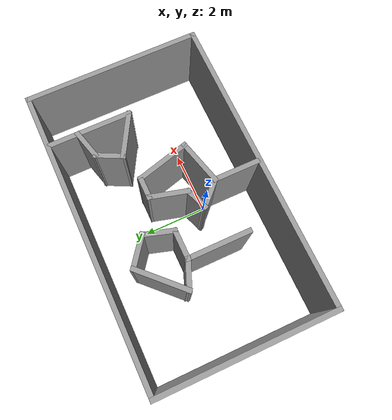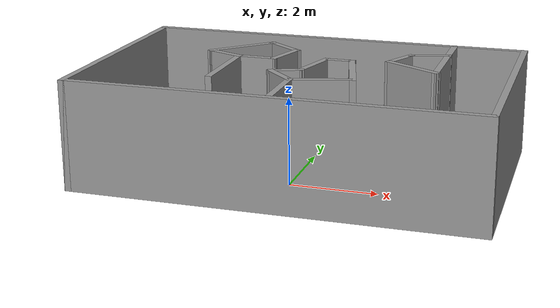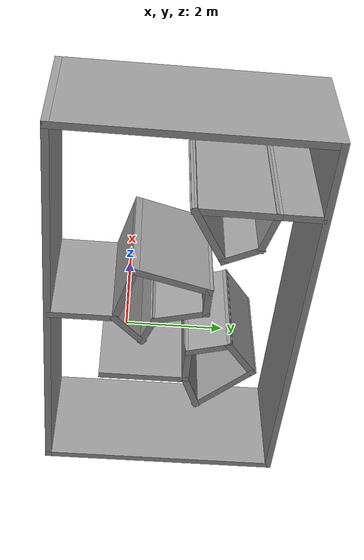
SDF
<?xml version='1.0'?>
<sdf version='1.7'>
  <model name='buildings'>
    <pose>0.05 1.005 0 0 -0 0</pose>
    <link name='Wall_1'>
      <collision name='Wall_1_Collision'>
        <geometry>
          <box>
            <size>5.5 0.15 2.5</size>
          </box>
        </geometry>
        <pose>0 0 1.25 0 -0 0</pose>
      </collision>
      <visual name='Wall_1_Visual'>
        <pose>0 0 1.25 0 -0 0</pose>
        <geometry>
          <box>
            <size>5.5 0.15 2.5</size>
          </box>
        </geometry>
        <material>
          <script>
            <uri>file://media/materials/scripts/gazebo.material</uri>
            <name>Gazebo/Grey</name>
          </script>
          <ambient>1 1 1 1</ambient>
        </material>
        <meta>
          <layer>0</layer>
        </meta>
      </visual>
      <pose>-4.55 0 0 0 -0 1.5708</pose>
    </link>
    <link name='Wall_10'>
      <collision name='Wall_10_Collision'>
        <geometry>
          <box>
            <size>1.11795 0.15 2.5</size>
          </box>
        </geometry>
        <pose>0 0 1.25 0 -0 0</pose>
      </collision>
      <visual name='Wall_10_Visual'>
        <pose>0 0 1.25 0 -0 0</pose>
        <geometry>
          <box>
            <size>1.11795 0.15 2.5</size>
          </box>
        </geometry>
        <material>
          <script>
            <uri>file://media/materials/scripts/gazebo.material</uri>
            <name>Gazebo/Grey</name>
          </script>
          <ambient>1 1 1 1</ambient>
        </material>
        <meta>
          <layer>0</layer>
        </meta>
      </visual>
      <pose>-0.958512 1.53153 0 0 -0 -0.654877</pose>
    </link>
    <link name='Wall_11'>
      <collision name='Wall_11_Collision'>
        <geometry>
          <box>
            <size>1.04909 0.15 2.5</size>
          </box>
        </geometry>
        <pose>0 0 1.25 0 -0 0</pose>
      </collision>
      <visual name='Wall_11_Visual'>
        <pose>0 0 1.25 0 -0 0</pose>
        <geometry>
          <box>
            <size>1.04909 0.15 2.5</size>
          </box>
        </geometry>
        <material>
          <script>
            <uri>file://media/materials/scripts/gazebo.material</uri>
            <name>Gazebo/Grey</name>
          </script>
          <ambient>1 1 1 1</ambient>
        </material>
        <meta>
          <layer>0</layer>
        </meta>
      </visual>
      <pose>-0.714782 0.806014 0 0 -0 -1.86097</pose>
    </link>
    <link name='Wall_12'>
      <collision name='Wall_12_Collision'>
        <geometry>
          <box>
            <size>1 0.15 2.5</size>
          </box>
        </geometry>
        <pose>0 0 1.25 0 -0 0</pose>
      </collision>
      <visual name='Wall_12_Visual'>
        <pose>0 0 1.25 0 -0 0</pose>
        <geometry>
          <box>
            <size>1 0.15 2.5</size>
          </box>
        </geometry>
        <material>
          <script>
            <uri>file://media/materials/scripts/gazebo.material</uri>
            <name>Gazebo/Grey</name>
          </script>
          <ambient>1 1 1 1</ambient>
        </material>
        <meta>
          <layer>0</layer>
        </meta>
      </visual>
      <pose>-1.2684 0.375264 0 0 -0 3.14159</pose>
    </link>
    <link name='Wall_14'>
      <collision name='Wall_14_Collision'>
        <geometry>
          <box>
            <size>1.25 0.15 2.5</size>
          </box>
        </geometry>
        <pose>0 0 1.25 0 -0 0</pose>
      </collision>
      <visual name='Wall_14_Visual'>
        <pose>0 0 1.25 0 -0 0</pose>
        <geometry>
          <box>
            <size>1.25 0.15 2.5</size>
          </box>
        </geometry>
        <material>
          <script>
            <uri>file://media/materials/scripts/gazebo.material</uri>
            <name>Gazebo/Grey</name>
          </script>
          <ambient>1 1 1 1</ambient>
        </material>
        <meta>
          <layer>0</layer>
        </meta>
      </visual>
      <pose>0.176947 0.101523 0 0 -0 1.309</pose>
    </link>
    <link name='Wall_15'>
      <collision name='Wall_15_Collision'>
        <geometry>
          <box>
            <size>0.75 0.15 2.5</size>
          </box>
        </geometry>
        <pose>0 0 1.25 0 -0 0</pose>
      </collision>
      <visual name='Wall_15_Visual'>
        <pose>0 0 1.25 0 -0 0</pose>
        <geometry>
          <box>
            <size>0.75 0.15 2.5</size>
          </box>
        </geometry>
        <material>
          <script>
            <uri>file://media/materials/scripts/gazebo.material</uri>
            <name>Gazebo/Grey</name>
          </script>
          <ambient>1 1 1 1</ambient>
        </material>
        <meta>
          <layer>0</layer>
        </meta>
      </visual>
      <pose>0.619297 0.632782 0 0 -0 0</pose>
    </link>
    <link name='Wall_16'>
      <collision name='Wall_16_Collision'>
        <geometry>
          <box>
            <size>1.75 0.15 2.5</size>
          </box>
        </geometry>
        <pose>0 0 1.25 0 -0 0</pose>
      </collision>
      <visual name='Wall_16_Visual'>
        <pose>0 0 1.25 0 -0 0</pose>
        <geometry>
          <box>
            <size>1.75 0.15 2.5</size>
          </box>
        </geometry>
        <material>
          <script>
            <uri>file://media/materials/scripts/gazebo.material</uri>
            <name>Gazebo/Grey</name>
          </script>
          <ambient>1 1 1 1</ambient>
        </material>
        <meta>
          <layer>0</layer>
        </meta>
      </visual>
      <pose>1.12635 -0.139959 0 0 -0 -1.309</pose>
    </link>
    <link name='Wall_17'>
      <collision name='Wall_17_Collision'>
        <geometry>
          <box>
            <size>1.5 0.15 2.5</size>
          </box>
        </geometry>
        <pose>0 0 1.25 0 -0 0</pose>
      </collision>
      <visual name='Wall_17_Visual'>
        <pose>0 0 1.25 0 -0 0</pose>
        <geometry>
          <box>
            <size>1.5 0.15 2.5</size>
          </box>
        </geometry>
        <material>
          <script>
            <uri>file://media/materials/scripts/gazebo.material</uri>
            <name>Gazebo/Grey</name>
          </script>
          <ambient>1 1 1 1</ambient>
        </material>
        <meta>
          <layer>0</layer>
        </meta>
      </visual>
      <pose>0.681408 -1.0874 0 0 -0 -2.87979</pose>
    </link>
    <link name='Wall_18'>
      <collision name='Wall_18_Collision'>
        <geometry>
          <box>
            <size>1 0.15 2.5</size>
          </box>
        </geometry>
        <pose>0 0 1.25 0 -0 0</pose>
      </collision>
      <visual name='Wall_18_Visual'>
        <pose>0 0 1.25 0 -0 0</pose>
        <geometry>
          <box>
            <size>1 0.15 2.5</size>
          </box>
        </geometry>
        <material>
          <script>
            <uri>file://media/materials/scripts/gazebo.material</uri>
            <name>Gazebo/Grey</name>
          </script>
          <ambient>1 1 1 1</ambient>
        </material>
        <meta>
          <layer>0</layer>
        </meta>
      </visual>
      <pose>-0.271112 -0.961584 0 0 -0 2.35619</pose>
    </link>
    <link name='Wall_19'>
      <collision name='Wall_19_Collision'>
        <geometry>
          <box>
            <size>0.798865 0.15 2.5</size>
          </box>
        </geometry>
        <pose>0 0 1.25 0 -0 0</pose>
      </collision>
      <visual name='Wall_19_Visual'>
        <pose>0 0 1.25 0 -0 0</pose>
        <geometry>
          <box>
            <size>0.798865 0.15 2.5</size>
          </box>
        </geometry>
        <material>
          <script>
            <uri>file://media/materials/scripts/gazebo.material</uri>
            <name>Gazebo/Grey</name>
          </script>
          <ambient>1 1 1 1</ambient>
        </material>
        <meta>
          <layer>0</layer>
        </meta>
      </visual>
      <pose>-0.268518 -0.5454 0 0 -0 0.364531</pose>
    </link>
    <link name='Wall_2'>
      <collision name='Wall_2_Collision'>
        <geometry>
          <box>
            <size>9.25 0.15 2.5</size>
          </box>
        </geometry>
        <pose>0 0 1.25 0 -0 0</pose>
      </collision>
      <visual name='Wall_2_Visual'>
        <pose>0 0 1.25 0 -0 0</pose>
        <geometry>
          <box>
            <size>9.25 0.15 2.5</size>
          </box>
        </geometry>
        <material>
          <script>
            <uri>file://media/materials/scripts/gazebo.material</uri>
            <name>Gazebo/Grey</name>
          </script>
          <ambient>1 1 1 1</ambient>
        </material>
        <meta>
          <layer>0</layer>
        </meta>
      </visual>
      <pose>0 2.675 0 0 -0 0</pose>
    </link>
    <link name='Wall_21'>
      <collision name='Wall_21_Collision'>
        <geometry>
          <box>
            <size>1 0.15 2.5</size>
          </box>
        </geometry>
        <pose>0 0 1.25 0 -0 0</pose>
      </collision>
      <visual name='Wall_21_Visual'>
        <pose>0 0 1.25 0 -0 0</pose>
        <geometry>
          <box>
            <size>1 0.15 2.5</size>
          </box>
        </geometry>
        <material>
          <script>
            <uri>file://media/materials/scripts/gazebo.material</uri>
            <name>Gazebo/Grey</name>
          </script>
          <ambient>1 1 1 1</ambient>
        </material>
        <meta>
          <layer>0</layer>
        </meta>
      </visual>
      <pose>2.50361 1.63526 0 0 -0 0.261799</pose>
    </link>
    <link name='Wall_22'>
      <collision name='Wall_22_Collision'>
        <geometry>
          <box>
            <size>1.75 0.15 2.5</size>
          </box>
        </geometry>
        <pose>0 0 1.25 0 -0 0</pose>
      </collision>
      <visual name='Wall_22_Visual'>
        <pose>0 0 1.25 0 -0 0</pose>
        <geometry>
          <box>
            <size>1.75 0.15 2.5</size>
          </box>
        </geometry>
        <material>
          <script>
            <uri>file://media/materials/scripts/gazebo.material</uri>
            <name>Gazebo/Grey</name>
          </script>
          <ambient>1 1 1 1</ambient>
        </material>
        <meta>
          <layer>0</layer>
        </meta>
      </visual>
      <pose>2.91413 0.94526 0 0 -0 -1.5708</pose>
    </link>
    <link name='Wall_23'>
      <collision name='Wall_23_Collision'>
        <geometry>
          <box>
            <size>1.5 0.15 2.5</size>
          </box>
        </geometry>
        <pose>0 0 1.25 0 -0 0</pose>
      </collision>
      <visual name='Wall_23_Visual'>
        <pose>0 0 1.25 0 -0 0</pose>
        <geometry>
          <box>
            <size>1.5 0.15 2.5</size>
          </box>
        </geometry>
        <material>
          <script>
            <uri>file://media/materials/scripts/gazebo.material</uri>
            <name>Gazebo/Grey</name>
          </script>
          <ambient>1 1 1 1</ambient>
        </material>
        <meta>
          <layer>0</layer>
        </meta>
      </visual>
      <pose>2.32957 0.48276 0 0 -0 2.61799</pose>
    </link>
    <link name='Wall_24'>
      <collision name='Wall_24_Collision'>
        <geometry>
          <box>
            <size>0.936258 0.15 2.5</size>
          </box>
        </geometry>
        <pose>0 0 1.25 0 -0 0</pose>
      </collision>
      <visual name='Wall_24_Visual'>
        <pose>0 0 1.25 0 -0 0</pose>
        <geometry>
          <box>
            <size>0.936258 0.15 2.5</size>
          </box>
        </geometry>
        <material>
          <script>
            <uri>file://media/materials/scripts/gazebo.material</uri>
            <name>Gazebo/Grey</name>
          </script>
          <ambient>1 1 1 1</ambient>
        </material>
        <meta>
          <layer>0</layer>
        </meta>
      </visual>
      <pose>1.91905 1.17276 0 0 -0 1.11216</pose>
    </link>
    <link name='Wall_26'>
      <collision name='Wall_26_Collision'>
        <geometry>
          <box>
            <size>2 0.15 2.5</size>
          </box>
        </geometry>
        <pose>0 0 1.25 0 -0 0</pose>
      </collision>
      <visual name='Wall_26_Visual'>
        <pose>0 0 1.25 0 -0 0</pose>
        <geometry>
          <box>
            <size>2 0.15 2.5</size>
          </box>
        </geometry>
        <material>
          <script>
            <uri>file://media/materials/scripts/gazebo.material</uri>
            <name>Gazebo/Grey</name>
          </script>
          <ambient>1 1 1 1</ambient>
        </material>
        <meta>
          <layer>0</layer>
        </meta>
      </visual>
      <pose>-1.6934 -0.549736 0 0 -0 -1.5708</pose>
    </link>
    <link name='Wall_28'>
      <collision name='Wall_28_Collision'>
        <geometry>
          <box>
            <size>1.5 0.15 2.5</size>
          </box>
        </geometry>
        <pose>0 0 1.25 0 -0 0</pose>
      </collision>
      <visual name='Wall_28_Visual'>
        <pose>0 0 1.25 0 -0 0</pose>
        <geometry>
          <box>
            <size>1.5 0.15 2.5</size>
          </box>
        </geometry>
        <material>
          <script>
            <uri>file://media/materials/scripts/gazebo.material</uri>
            <name>Gazebo/Grey</name>
          </script>
          <ambient>1 1 1 1</ambient>
        </material>
        <meta>
          <layer>0</layer>
        </meta>
      </visual>
      <pose>0.029408 -1.93711 0 0 -0 -1.5708</pose>
    </link>
    <link name='Wall_3'>
      <collision name='Wall_3_Collision'>
        <geometry>
          <box>
            <size>5.5 0.15 2.5</size>
          </box>
        </geometry>
        <pose>0 0 1.25 0 -0 0</pose>
      </collision>
      <visual name='Wall_3_Visual'>
        <pose>0 0 1.25 0 -0 0</pose>
        <geometry>
          <box>
            <size>5.5 0.15 2.5</size>
          </box>
        </geometry>
        <material>
          <script>
            <uri>file://media/materials/scripts/gazebo.material</uri>
            <name>Gazebo/Grey</name>
          </script>
          <ambient>1 1 1 1</ambient>
        </material>
        <meta>
          <layer>0</layer>
        </meta>
      </visual>
      <pose>4.55 0 0 0 -0 -1.5708</pose>
    </link>
    <link name='Wall_30'>
      <collision name='Wall_30_Collision'>
        <geometry>
          <box>
            <size>1 0.15 2.5</size>
          </box>
        </geometry>
        <pose>0 0 1.25 0 -0 0</pose>
      </collision>
      <visual name='Wall_30_Visual'>
        <pose>0 0 1.25 0 -0 0</pose>
        <geometry>
          <box>
            <size>1 0.15 2.5</size>
          </box>
        </geometry>
        <material>
          <script>
            <uri>file://media/materials/scripts/gazebo.material</uri>
            <name>Gazebo/Grey</name>
          </script>
          <ambient>1 1 1 1</ambient>
        </material>
        <meta>
          <layer>0</layer>
        </meta>
      </visual>
      <pose>2.91413 2.17026 0 0 -0 1.5708</pose>
    </link>
    <link name='Wall_4'>
      <collision name='Wall_4_Collision'>
        <geometry>
          <box>
            <size>9.25 0.15 2.5</size>
          </box>
        </geometry>
        <pose>0 0 1.25 0 -0 0</pose>
      </collision>
      <visual name='Wall_4_Visual'>
        <pose>0 0 1.25 0 -0 0</pose>
        <geometry>
          <box>
            <size>9.25 0.15 2.5</size>
          </box>
        </geometry>
        <material>
          <script>
            <uri>file://media/materials/scripts/gazebo.material</uri>
            <name>Gazebo/Grey</name>
          </script>
          <ambient>1 1 1 1</ambient>
        </material>
        <meta>
          <layer>0</layer>
        </meta>
      </visual>
      <pose>0 -2.675 0 0 -0 3.14159</pose>
    </link>
    <link name='Wall_5'>
      <collision name='Wall_5_Collision'>
        <geometry>
          <box>
            <size>0.15 0.15 2.5</size>
          </box>
        </geometry>
        <pose>0 0 1.25 0 -0 0</pose>
      </collision>
      <visual name='Wall_5_Visual'>
        <pose>0 0 1.25 0 -0 0</pose>
        <geometry>
          <box>
            <size>0.15 0.15 2.5</size>
          </box>
        </geometry>
        <material>
          <script>
            <uri>file://media/materials/scripts/gazebo.material</uri>
            <name>Gazebo/Grey</name>
          </script>
          <ambient>1 1 1 1</ambient>
        </material>
        <meta>
          <layer>0</layer>
        </meta>
      </visual>
      <pose>-4.55 -2.675 0 0 -0 0</pose>
    </link>
    <link name='Wall_8'>
      <collision name='Wall_8_Collision'>
        <geometry>
          <box>
            <size>0.99327 0.15 2.5</size>
          </box>
        </geometry>
        <pose>0 0 1.25 0 -0 0</pose>
      </collision>
      <visual name='Wall_8_Visual'>
        <pose>0 0 1.25 0 -0 0</pose>
        <geometry>
          <box>
            <size>0.99327 0.15 2.5</size>
          </box>
        </geometry>
        <material>
          <script>
            <uri>file://media/materials/scripts/gazebo.material</uri>
            <name>Gazebo/Grey</name>
          </script>
          <ambient>1 1 1 1</ambient>
        </material>
        <meta>
          <layer>0</layer>
        </meta>
      </visual>
      <pose>-2.08357 0.535099 0 0 -0 2.75279</pose>
    </link>
    <link name='Wall_9'>
      <collision name='Wall_9_Collision'>
        <geometry>
          <box>
            <size>1.75 0.15 2.5</size>
          </box>
        </geometry>
        <pose>0 0 1.25 0 -0 0</pose>
      </collision>
      <visual name='Wall_9_Visual'>
        <pose>0 0 1.25 0 -0 0</pose>
        <geometry>
          <box>
            <size>1.75 0.15 2.5</size>
          </box>
        </geometry>
        <material>
          <script>
            <uri>file://media/materials/scripts/gazebo.material</uri>
            <name>Gazebo/Grey</name>
          </script>
          <ambient>1 1 1 1</ambient>
        </material>
        <meta>
          <layer>0</layer>
        </meta>
      </visual>
      <pose>-1.90805 1.26062 0 0 -0 0.785398</pose>
    </link>
    <static>1</static>
  </model>
</sdf>
